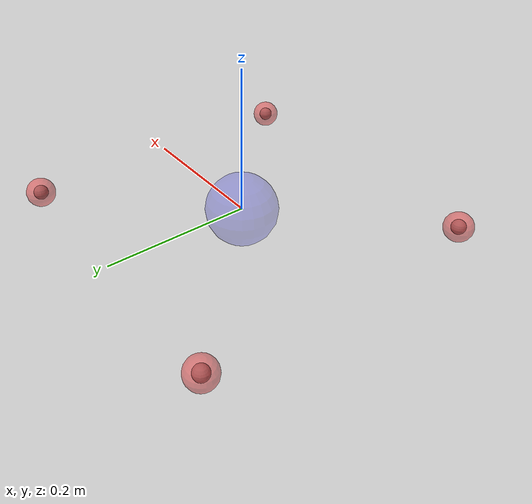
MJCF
<mujoco model="jx_fly">
  <compiler angle="radian" inertial="local"/>

  <option timestep="0.005" integrator="Euler">
    <flag gravity="enable" contact="disable" constraint="disable"/>
  </option>

  <default>
    <!-- All bodies are freejoint; no actuator/motor geom needed for
         physics — the bridge injects forces via xfrc_applied. -->
    <body type="free"/>
  </default>

  <worldbody>
    <!-- Minimal scene geometry so the renderer shows something. -->
    <light name="top" pos="0 0 3" dir="0 0 -1" diffuse=".8 .8 .8"/>

    <body name="airframe" pos="0 0 0" mocap="true">
      <freejoint name="airframe_root"/>

      <inertial
        pos="0 0 0"
        mass="1.2961"
        fullinertia="1 1 1 0.00839 0.00930 0.01485"/>

      <!-- Visual: small sphere at the thrust plane (z=0 in body = CG level). -->
      <geom
        type="sphere"
        size="0.05"
        pos="0 0 0"
        rgba=".15 .15 .85 .3"
        contype="0"
        conaffinity="0"/>

      <body name="M1" pos=" 0.200  0.200  0.0">
        <freejoint name="M1_root"/>
        <!-- Visual only — small sphere at motor location. -->
        <geom
          type="sphere"
          size="0.02"
          pos="0 0 0"
          rgba=".9 .2 .2 .5"
          contype="0"
          conaffinity="0"/>
      </body>

      <body name="M2" pos="-0.200  0.200  0.0">
        <freejoint name="M2_root"/>
        <geom
          type="sphere"
          size="0.02"
          pos="0 0 0"
          rgba=".9 .2 .2 .5"
          contype="0"
          conaffinity="0"/>
      </body>

      <body name="M3" pos="-0.200 -0.200  0.0">
        <freejoint name="M3_root"/>
        <geom
          type="sphere"
          size="0.02"
          pos="0 0 0"
          rgba=".9 .2 .2 .5"
          contype="0"
          conaffinity="0"/>
      </body>

      <body name="M4" pos=" 0.200 -0.200  0.0">
        <freejoint name="M4_root"/>
        <geom
          type="sphere"
          size="0.02"
          pos="0 0 0"
          rgba=".9 .2 .2 .5"
          contype="0"
          conaffinity="0"/>
      </body>

      <site name="motor_M1" pos=" 0.200  0.200  0.0" size="0.01"/>
      <site name="motor_M2" pos="-0.200  0.200  0.0" size="0.01"/>
      <site name="motor_M3" pos="-0.200 -0.200  0.0" size="0.01"/>
      <site name="motor_M4" pos=" 0.200 -0.200  0.0" size="0.01"/>

    </body>
  </worldbody>
</mujoco>
